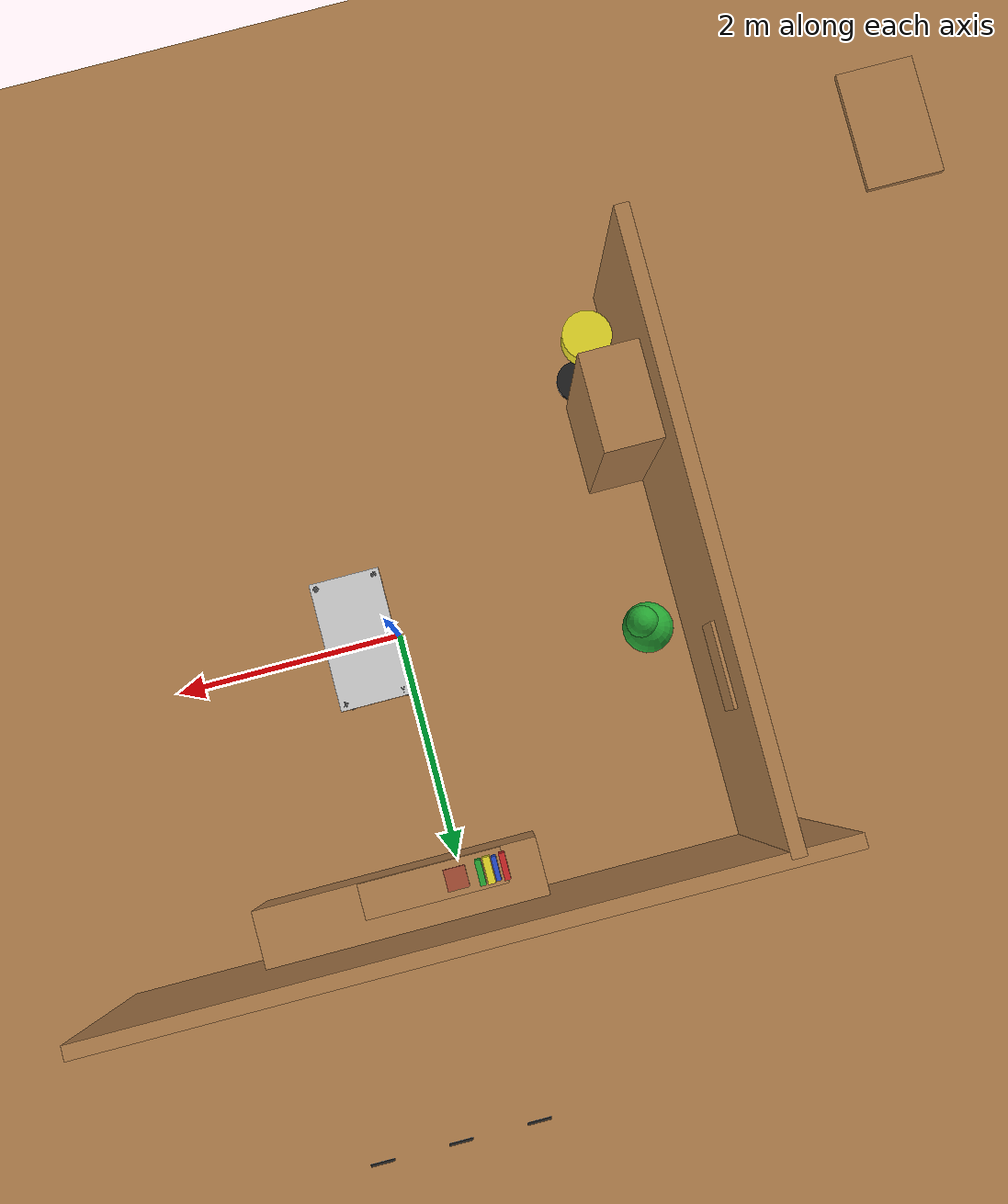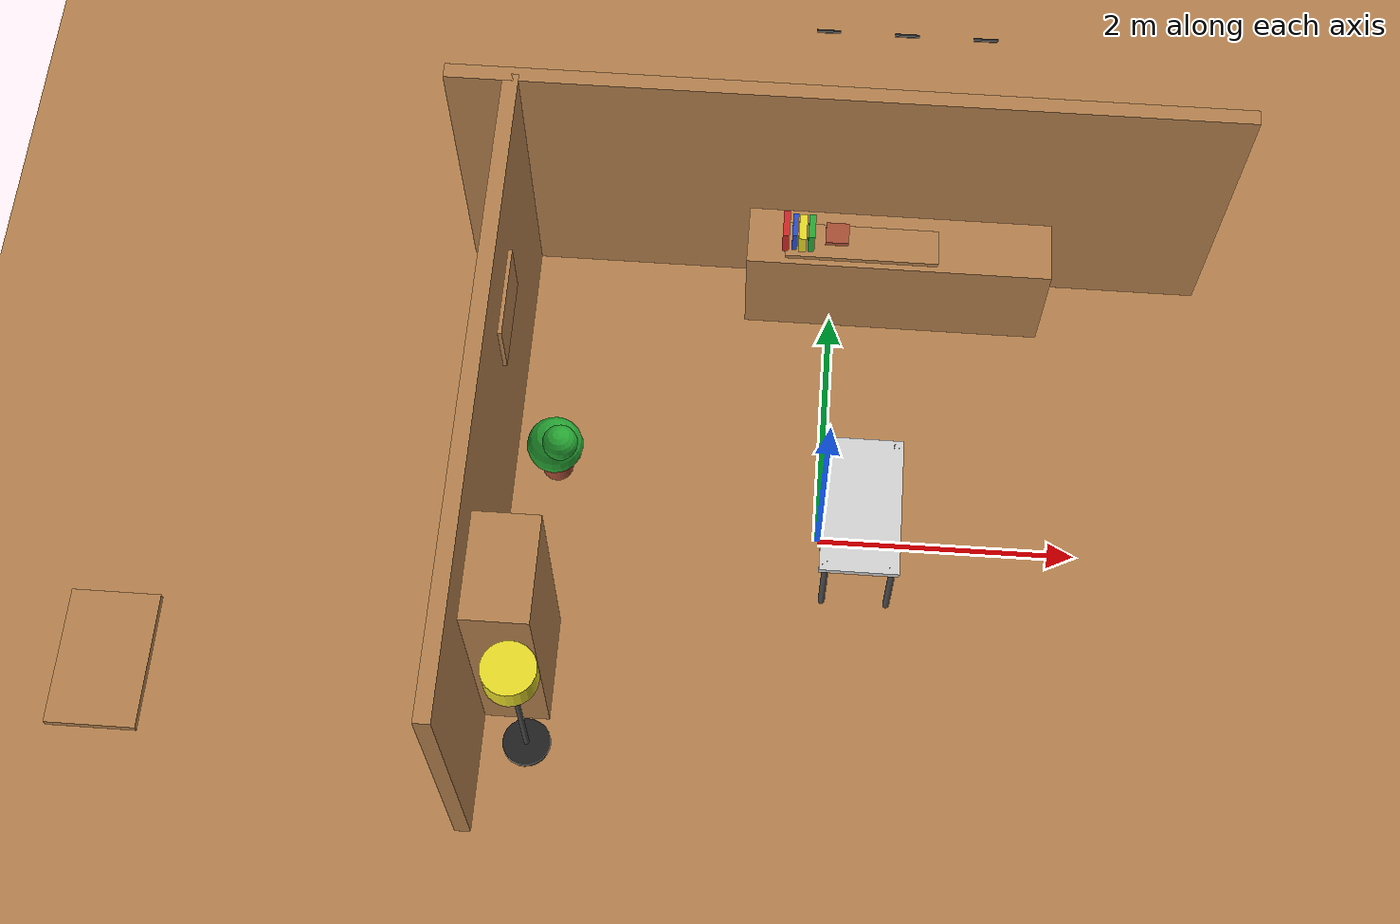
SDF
<?xml version="1.0" ?>
<sdf version="1.6">
  <world name="research_lab">

    <!-- ──────────────────── ILUMINAÇÃO ─────────────────────────────── -->
    <!-- Luz solar quase neutra entrando obliquamente. -->
    <light name="sun" type="directional">
      <pose>0 0 12 0 0 0</pose>
      <diffuse>1.00 0.95 0.85 1</diffuse>
      <specular>0.10 0.10 0.10 1</specular>
      <direction>-0.30 0.50 -1.00</direction>
      <attenuation>
        <range>30</range>
        <constant>0.85</constant>
        <linear>0.01</linear>
        <quadratic>0.001</quadratic>
      </attenuation>
      <cast_shadows>true</cast_shadows>
    </light>

    <!-- Abajur de teto — luz amarelo-quente, sem sombra dura. -->
    <light name="ceiling_warm" type="point">
      <pose>0.6 -0.4 2.6 0 0 0</pose>
      <diffuse>1.00 0.88 0.70 1</diffuse>
      <specular>0.05 0.05 0.05 1</specular>
      <attenuation>
        <range>6</range><constant>0.6</constant>
        <linear>0.10</linear><quadratic>0.02</quadratic>
      </attenuation>
      <cast_shadows>false</cast_shadows>
    </light>

    <!-- Abajur de chão complementa o canto escuro. -->
    <light name="floor_lamp_light" type="point">
      <pose>-2.0 -1.5 1.4 0 0 0</pose>
      <diffuse>1.00 0.85 0.60 1</diffuse>
      <specular>0.03 0.03 0.03 1</specular>
      <attenuation>
        <range>3</range><constant>0.70</constant>
        <linear>0.20</linear><quadratic>0.03</quadratic>
      </attenuation>
      <cast_shadows>false</cast_shadows>
    </light>

    <scene>
      <ambient>0.45 0.42 0.38 1</ambient>
      <background>0.85 0.80 0.72 1</background>
      <shadows>true</shadows>
    </scene>

    <physics name="default_physics" default="0" type="ode">
      <gravity>0 0 -9.81</gravity>
      <max_step_size>0.004</max_step_size>
      <real_time_factor>1.0</real_time_factor>
      <real_time_update_rate>250</real_time_update_rate>
      <ode>
        <solver><type>quick</type><iters>50</iters><sor>1.3</sor></solver>
        <constraints>
          <cfm>1.0e-5</cfm><erp>0.25</erp>
          <contact_max_correcting_vel>2.0</contact_max_correcting_vel>
          <contact_surface_layer>0.001</contact_surface_layer>
        </constraints>
      </ode>
    </physics>

    <!-- ─────────────────── PISO DE MADEIRA ──────────────────────────── -->
    <model name="wooden_floor">
      <static>true</static>
      <link name="link">
        <collision name="col">
          <geometry><plane><normal>0 0 1</normal><size>14 14</size></plane></geometry>
          <surface><friction><ode><mu>0.9</mu><mu2>0.9</mu2></ode></friction></surface>
        </collision>
        <visual name="vis">
          <geometry><plane><normal>0 0 1</normal><size>14 14</size></plane></geometry>
          <material>
            <script>
              <uri>file://media/materials/scripts/gazebo.material</uri>
              <name>Gazebo/Wood</name>
            </script>
          </material>
        </visual>
      </link>
    </model>

    <!-- ────────────────── DUAS PAREDES DE MADEIRA ──────────────────── -->
    <!-- Parede NORTE — madeira clara — segue o lado +Y. -->
    <model name="wall_north">
      <static>true</static>
      <pose>0 2.5 1.25 0 0 0</pose>
      <link name="link">
        <collision name="col">
          <geometry><box><size>6.0 0.12 2.5</size></box></geometry>
        </collision>
        <visual name="vis">
          <geometry><box><size>6.0 0.12 2.5</size></box></geometry>
          <material>
            <script>
              <uri>file://media/materials/scripts/gazebo.material</uri>
              <name>Gazebo/Wood</name>
            </script>
          </material>
        </visual>
      </link>
    </model>

    <!-- Parede OESTE — mesma madeira — lado −X. -->
    <model name="wall_west">
      <static>true</static>
      <pose>-2.5 0 1.25 0 0 1.5708</pose>
      <link name="link">
        <collision name="col">
          <geometry><box><size>5.0 0.12 2.5</size></box></geometry>
        </collision>
        <visual name="vis">
          <geometry><box><size>5.0 0.12 2.5</size></box></geometry>
          <material>
            <script>
              <uri>file://media/materials/scripts/gazebo.material</uri>
              <name>Gazebo/Wood</name>
            </script>
          </material>
        </visual>
      </link>
    </model>

    <!-- ─────────────────── MESA PRINCIPAL DE LAB ────────────────────── -->
    <model name="lab_table">
      <static>true</static>
      <link name="top">
        <pose>0.30 0 0.725 0 0 0</pose>
        <collision name="col">
          <geometry><box><size>0.60 1.10 0.05</size></box></geometry>
          <surface>
            <friction><ode><mu>0.8</mu><mu2>0.8</mu2></ode></friction>
            <contact><ode><kp>1.0e6</kp><kd>1.0</kd>
              <min_depth>0.00005</min_depth></ode></contact>
          </surface>
        </collision>
        <visual name="vis">
          <geometry><box><size>0.60 1.10 0.05</size></box></geometry>
          <material>
            <ambient>0.78 0.78 0.78 1</ambient>
            <diffuse>0.82 0.82 0.82 1</diffuse>
            <specular>0.20 0.20 0.20 1</specular>
          </material>
        </visual>
      </link>
      <link name="leg_a">
        <pose>0.05 -0.50 0.375 0 0 0</pose>
        <visual name="v"><geometry><cylinder><radius>0.025</radius><length>0.75</length></cylinder></geometry><material><script><name>Gazebo/DarkGrey</name></script></material></visual>
      </link>
      <link name="leg_b">
        <pose>0.05  0.50 0.375 0 0 0</pose>
        <visual name="v"><geometry><cylinder><radius>0.025</radius><length>0.75</length></cylinder></geometry><material><script><name>Gazebo/DarkGrey</name></script></material></visual>
      </link>
      <link name="leg_c">
        <pose>0.55 -0.50 0.375 0 0 0</pose>
        <visual name="v"><geometry><cylinder><radius>0.025</radius><length>0.75</length></cylinder></geometry><material><script><name>Gazebo/DarkGrey</name></script></material></visual>
      </link>
      <link name="leg_d">
        <pose>0.55  0.50 0.375 0 0 0</pose>
        <visual name="v"><geometry><cylinder><radius>0.025</radius><length>0.75</length></cylinder></geometry><material><script><name>Gazebo/DarkGrey</name></script></material></visual>
      </link>
    </model>

    <!-- ────────────────────── ARMÁRIOS DECORATIVOS ──────────────────── -->
    <!-- Armário longo encostado na parede norte — 2.4 × 0.5 × 0.95 m. -->
    <model name="cabinet_north">
      <static>true</static>
      <pose>0.50 2.20 0.475 0 0 0</pose>
      <link name="link">
        <collision name="col">
          <geometry><box><size>2.40 0.50 0.95</size></box></geometry>
        </collision>
        <visual name="vis">
          <geometry><box><size>2.40 0.50 0.95</size></box></geometry>
          <material>
            <script>
              <uri>file://media/materials/scripts/gazebo.material</uri>
              <name>Gazebo/WoodPallet</name>
            </script>
          </material>
        </visual>
      </link>
      <!-- 3 puxadores horizontais (visual). -->
      <link name="handle1">
        <pose>-0.65 1.96 0.55 0 0 0</pose>
        <visual name="v"><geometry><box><size>0.20 0.02 0.02</size></box></geometry><material><script><name>Gazebo/Black</name></script></material></visual>
      </link>
      <link name="handle2">
        <pose> 0.00 1.96 0.55 0 0 0</pose>
        <visual name="v"><geometry><box><size>0.20 0.02 0.02</size></box></geometry><material><script><name>Gazebo/Black</name></script></material></visual>
      </link>
      <link name="handle3">
        <pose> 0.65 1.96 0.55 0 0 0</pose>
        <visual name="v"><geometry><box><size>0.20 0.02 0.02</size></box></geometry><material><script><name>Gazebo/Black</name></script></material></visual>
      </link>
    </model>

    <!-- Armário alto de canto — encostado na parede oeste. -->
    <model name="cabinet_west_tall">
      <static>true</static>
      <pose>-2.20 -1.20 1.00 0 0 0</pose>
      <link name="link">
        <collision name="col">
          <geometry><box><size>0.50 0.80 2.00</size></box></geometry>
        </collision>
        <visual name="vis">
          <geometry><box><size>0.50 0.80 2.00</size></box></geometry>
          <material>
            <script>
              <uri>file://media/materials/scripts/gazebo.material</uri>
              <name>Gazebo/Wood</name>
            </script>
          </material>
        </visual>
      </link>
      <link name="trim_top">
        <pose>-2.20 -1.20 2.05 0 0 0</pose>
        <visual name="v"><geometry><box><size>0.56 0.86 0.05</size></box></geometry><material><script><name>Gazebo/WoodPallet</name></script></material></visual>
      </link>
    </model>

    <!-- Prateleira com livros — apoiada no armário norte. -->
    <model name="shelf_books">
      <static>true</static>
      <link name="shelf">
        <pose>0.20 2.10 1.05 0 0 0</pose>
        <visual name="v"><geometry><box><size>1.20 0.30 0.04</size></box></geometry><material><script><name>Gazebo/Wood</name></script></material></visual>
      </link>
      <link name="book_a">
        <pose>-0.40 2.10 1.18 0 0 0</pose>
        <visual name="v"><geometry><box><size>0.05 0.22 0.24</size></box></geometry><material><script><name>Gazebo/Red</name></script></material></visual>
      </link>
      <link name="book_b">
        <pose>-0.33 2.10 1.18 0 0 0</pose>
        <visual name="v"><geometry><box><size>0.04 0.20 0.22</size></box></geometry><material><script><name>Gazebo/Blue</name></script></material></visual>
      </link>
      <link name="book_c">
        <pose>-0.27 2.10 1.16 0 0 0</pose>
        <visual name="v"><geometry><box><size>0.06 0.22 0.20</size></box></geometry><material><script><name>Gazebo/DarkYellow</name></script></material></visual>
      </link>
      <link name="book_d">
        <pose>-0.20 2.10 1.17 0 0 0</pose>
        <visual name="v"><geometry><box><size>0.05 0.21 0.22</size></box></geometry><material><script><name>Gazebo/Green</name></script></material></visual>
      </link>
      <link name="book_e">
        <pose> 0.00 2.10 1.18 0 0 0</pose>
        <visual name="v"><geometry><box><size>0.18 0.18 0.04</size></box></geometry><material><script><name>Gazebo/Bricks</name></script></material></visual>
      </link>
    </model>

    <!-- Abajur de chão no canto oeste. -->
    <model name="floor_lamp">
      <static>true</static>
      <link name="pole">
        <pose>-2.10 -1.80 0.75 0 0 0</pose>
        <visual name="v"><geometry><cylinder><radius>0.02</radius><length>1.50</length></cylinder></geometry><material><script><name>Gazebo/DarkGrey</name></script></material></visual>
      </link>
      <link name="base">
        <pose>-2.10 -1.80 0.02 0 0 0</pose>
        <visual name="v"><geometry><cylinder><radius>0.18</radius><length>0.04</length></cylinder></geometry><material><script><name>Gazebo/Black</name></script></material></visual>
      </link>
      <link name="shade">
        <pose>-2.10 -1.80 1.55 0 0 0</pose>
        <visual name="v"><geometry><cylinder><radius>0.20</radius><length>0.22</length></cylinder></geometry><material><script><name>Gazebo/Yellow</name></script></material></visual>
      </link>
    </model>

    <!-- Vaso de planta — visual decorativo no canto. -->
    <model name="potted_plant">
      <static>true</static>
      <link name="pot">
        <pose>-2.10 0.5 0.10 0 0 0</pose>
        <visual name="v"><geometry><cylinder><radius>0.12</radius><length>0.20</length></cylinder></geometry><material><script><name>Gazebo/Bricks</name></script></material></visual>
      </link>
      <link name="foliage">
        <pose>-2.10 0.5 0.40 0 0 0</pose>
        <visual name="v"><geometry><sphere><radius>0.22</radius></sphere></geometry><material><script><name>Gazebo/Green</name></script></material></visual>
      </link>
      <link name="foliage2">
        <pose>-2.05 0.45 0.55 0 0 0</pose>
        <visual name="v"><geometry><sphere><radius>0.14</radius></sphere></geometry><material><script><name>Gazebo/Green</name></script></material></visual>
      </link>
    </model>

    <!-- Quadro decorativo na parede oeste. -->
    <model name="wall_painting">
      <static>true</static>
      <pose>-2.43 1.0 1.65 0 0 1.5708</pose>
      <link name="link">
        <visual name="v"><geometry><box><size>0.70 0.04 0.50</size></box></geometry><material><script><name>Gazebo/WoodPallet</name></script></material></visual>
      </link>
    </model>

    <!-- ───────────────────── PLUGINS GAZEBO ↔ ROS ───────────────────── -->
    <plugin name="gazebo_ros_state" filename="libgazebo_ros_state.so">
      <ros><namespace>/gazebo</namespace></ros>
      <update_rate>50.0</update_rate>
    </plugin>

  </world>
</sdf>
